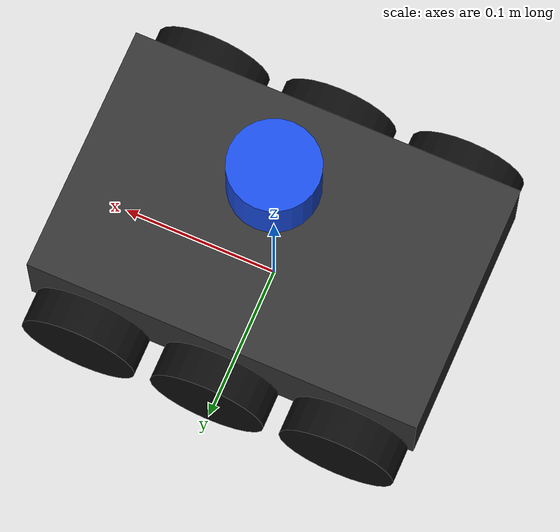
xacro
<?xml version="1.0"?>
<robot name="ugv02" xmlns:xacro="http://www.ros.org/wiki/xacro">

  <!-- ===== 치수 [m] ===== -->
  <!-- 스펙: 외곽 252 × 230 × 94 mm (바퀴 포함), 6바퀴 4WD 스키드 스티어 -->
  <xacro:property name="length"        value="0.252"/>  <!-- 앞뒤 길이 (스펙) -->
  <xacro:property name="width"         value="0.230"/>  <!-- 좌우 폭, 바퀴 포함 (스펙) -->
  <xacro:property name="height"        value="0.094"/>  <!-- 바닥 ~ 차체 윗면 (스펙) -->
  <xacro:property name="wheel_radius"  value="0.0375"/> <!-- 실측 10-31: 지름 7.5 cm -->
  <xacro:property name="wheel_width"   value="0.035"/>  <!-- ★ 바퀴 폭 -->
  <xacro:property name="track_width"   value="0.170"/>  <!-- 실측 10-31: 좌우 가운데 바퀴 중심 간격 17 cm. 브리지 track_width 파라미터와 같은 뜻 (odom 보정으로 실제 유효값은 따로 구함) -->
  <xacro:property name="wheel_base"    value="0.170"/>  <!-- ★ 맨 앞 바퀴 ~ 맨 뒤 바퀴 중심 거리 -->
  <xacro:property name="body_width"    value="${width - 2 * wheel_width}"/>
  <xacro:property name="body_height"   value="${height - wheel_radius}"/>

  <!-- 라이다 (RPLIDAR C1): 차체 중심(base_link 원점) 기준 위치 -->
  <xacro:property name="laser_x"   value="0.0"/>
  <xacro:property name="laser_y"   value="0.0"/>   <!-- ★ 왼(+)/오른(-) -->
  <xacro:property name="laser_scan_height" value="0.195"/> <!-- 실측 10-31: 바닥 ~ 라이다 창 가운데 19.5 cm. 이 높이 아래 물체(의자 다리 등)는 라이다가 못 봄 -->
  <xacro:property name="laser_z"   value="${laser_scan_height - wheel_radius}"/> <!-- base_link 원점(바퀴 축 높이) 기준. wheel_radius 가 ★ 라 이 값도 바퀴 실측 후 확정 -->
  <xacro:property name="laser_yaw" value="${pi}"/> <!-- ✅ 10-29 실측: 로봇 앞 물체가 라이다 +178° 로 찍힘 → 0°가 로봇 뒤쪽 → pi (wander.py check) -->

  <!-- ===== 부품 ===== -->
  <!-- 바닥에 찍힌 로봇 중심점. Nav2·브리지 odom 의 기준 -->
  <link name="base_footprint"/>

  <!-- 차체. 원점 = 바퀴 축 높이의 차체 중심 -->
  <link name="base_link">
    <visual>
      <origin xyz="0 0 ${body_height / 2}"/>
      <geometry><box size="${length} ${body_width} ${body_height}"/></geometry>
      <material name="dark"><color rgba="0.2 0.2 0.2 1"/></material>
    </visual>
    <collision>
      <origin xyz="0 0 ${body_height / 2}"/>
      <geometry><box size="${length} ${width} ${body_height}"/></geometry>
    </collision>
  </link>
  <joint name="base_joint" type="fixed">
    <parent link="base_footprint"/>
    <child link="base_link"/>
    <origin xyz="0 0 ${wheel_radius}"/>
  </joint>

  <!-- 바퀴 6개: 보이기만 하는 고정 부품 (회전은 ESP32 가 처리, ROS 는 바퀴 각도를 모름) -->
  <xacro:macro name="wheel" params="name x y">
    <link name="${name}_wheel">
      <visual>
        <origin rpy="${pi / 2} 0 0"/>
        <geometry><cylinder radius="${wheel_radius}" length="${wheel_width}"/></geometry>
        <material name="black"><color rgba="0.05 0.05 0.05 1"/></material>
      </visual>
    </link>
    <joint name="${name}_wheel_joint" type="fixed">
      <parent link="base_link"/>
      <child link="${name}_wheel"/>
      <origin xyz="${x} ${y} 0"/>
    </joint>
  </xacro:macro>
  <xacro:wheel name="front_left"  x="${ wheel_base / 2}" y="${ track_width / 2}"/>
  <xacro:wheel name="mid_left"    x="0"                  y="${ track_width / 2}"/>
  <xacro:wheel name="rear_left"   x="${-wheel_base / 2}" y="${ track_width / 2}"/>
  <xacro:wheel name="front_right" x="${ wheel_base / 2}" y="${-track_width / 2}"/>
  <xacro:wheel name="mid_right"   x="0"                  y="${-track_width / 2}"/>
  <xacro:wheel name="rear_right"  x="${-wheel_base / 2}" y="${-track_width / 2}"/>

  <!-- 라이다. 이름 laser = rplidar_ros 의 기본 frame_id -->
  <link name="laser">
    <visual>
      <geometry><cylinder radius="0.028" length="0.04"/></geometry>
      <material name="blue"><color rgba="0.1 0.3 0.9 1"/></material>
    </visual>
  </link>
  <joint name="laser_joint" type="fixed">
    <parent link="base_link"/>
    <child link="laser"/>
    <origin xyz="${laser_x} ${laser_y} ${laser_z}" rpy="0 0 ${laser_yaw}"/>
  </joint>
</robot>
